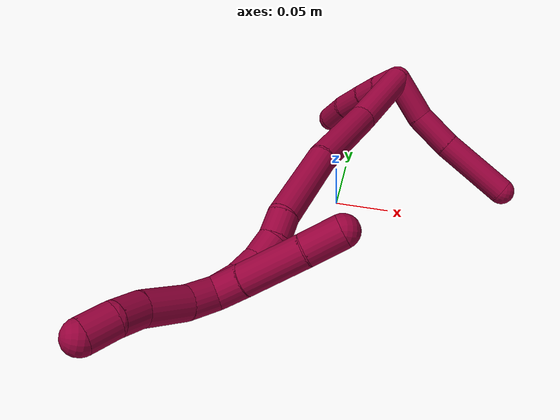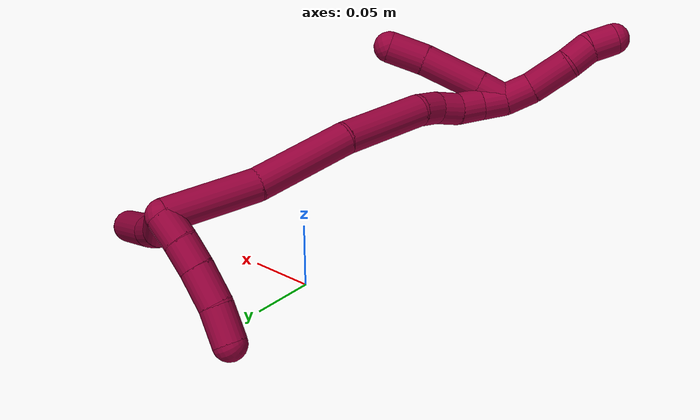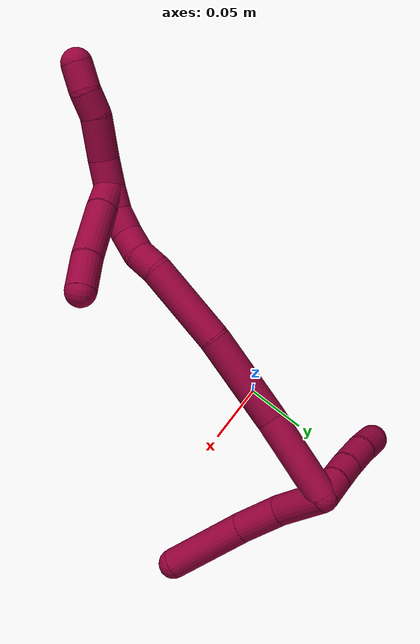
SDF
<sdf version="1.7">
 <world name="default">
  <model name="8">
   <static>0</static>
   <link name="8">
    <collision name="collision-cylinder-e_1_2_8">
     <pose>-0.012013 -0.012651 -0.012912 2.36642 -0.58654 -1.27377</pose>
     <geometry><cylinder><radius>0.0125</radius><length>0.043409</length></cylinder></geometry>
     <surface>
      <friction><ode><mu>1.16</mu><mu2>1.16</mu2><slip1>0</slip1><slip2>0</slip2></ode></friction>
      <contact><ode><kp>1e+06</kp><kd>1</kd><max_vel>0</max_vel><min_depth>0.001</min_depth></ode></contact>
     </surface>
    </collision>
    <visual name="visual-cylinder-e_1_2_8">
     <pose>-0.012013 -0.012651 -0.012912 2.36642 -0.58654 -1.27377</pose>
     <geometry><cylinder><radius>0.0125</radius><length>0.043409</length></cylinder></geometry>
     <material><ambient>0.584314 0 0.227451 1</ambient></material>
    </visual>
    <collision name="collision-cylinder-e_2_8_9">
     <pose>-0.030195 -0.038478 -0.038037 2.31825 -0.330791 -0.730309</pose>
     <geometry><cylinder><radius>0.0125</radius><length>0.037989</length></cylinder></geometry>
     <surface>
      <friction><ode><mu>1.16</mu><mu2>1.16</mu2><slip1>0</slip1><slip2>0</slip2></ode></friction>
      <contact><ode><kp>1e+06</kp><kd>1</kd><max_vel>0</max_vel><min_depth>0.001</min_depth></ode></contact>
     </surface>
    </collision>
    <visual name="visual-cylinder-e_2_8_9">
     <pose>-0.030195 -0.038478 -0.038037 2.31825 -0.330791 -0.730309</pose>
     <geometry><cylinder><radius>0.0125</radius><length>0.037989</length></cylinder></geometry>
     <material><ambient>0.584314 0 0.227451 1</ambient></material>
    </visual>
    <collision name="collision-cylinder-e_3_9_6">
     <pose>-0.044213 -0.075951 -0.073152 2.32665 -0.230862 -0.524863</pose>
     <geometry><cylinder><radius>0.0125</radius><length>0.068602</length></cylinder></geometry>
     <surface>
      <friction><ode><mu>1.16</mu><mu2>1.16</mu2><slip1>0</slip1><slip2>0</slip2></ode></friction>
      <contact><ode><kp>1e+06</kp><kd>1</kd><max_vel>0</max_vel><min_depth>0.001</min_depth></ode></contact>
     </surface>
    </collision>
    <visual name="visual-cylinder-e_3_9_6">
     <pose>-0.044213 -0.075951 -0.073152 2.32665 -0.230862 -0.524863</pose>
     <geometry><cylinder><radius>0.0125</radius><length>0.068602</length></cylinder></geometry>
     <material><ambient>0.584314 0 0.227451 1</ambient></material>
    </visual>
    <collision name="collision-cylinder-e_1_2_10">
     <pose>-0.008476 0.006205 0.003406 -1.06883 -0.875005 0.540143</pose>
     <geometry><cylinder><radius>0.0125</radius><length>0.022086</length></cylinder></geometry>
     <surface>
      <friction><ode><mu>1.16</mu><mu2>1.16</mu2><slip1>0</slip1><slip2>0</slip2></ode></friction>
      <contact><ode><kp>1e+06</kp><kd>1</kd><max_vel>0</max_vel><min_depth>0.001</min_depth></ode></contact>
     </surface>
    </collision>
    <visual name="visual-cylinder-e_1_2_10">
     <pose>-0.008476 0.006205 0.003406 -1.06883 -0.875005 0.540143</pose>
     <geometry><cylinder><radius>0.0125</radius><length>0.022086</length></cylinder></geometry>
     <material><ambient>0.584314 0 0.227451 1</ambient></material>
    </visual>
    <collision name="collision-cylinder-e_2_10_11">
     <pose>-0.025657 0.018523 0.009344 -1.17806 -0.920881 0.640024</pose>
     <geometry><cylinder><radius>0.0125</radius><length>0.021868</length></cylinder></geometry>
     <surface>
      <friction><ode><mu>1.16</mu><mu2>1.16</mu2><slip1>0</slip1><slip2>0</slip2></ode></friction>
      <contact><ode><kp>1e+06</kp><kd>1</kd><max_vel>0</max_vel><min_depth>0.001</min_depth></ode></contact>
     </surface>
    </collision>
    <visual name="visual-cylinder-e_2_10_11">
     <pose>-0.025657 0.018523 0.009344 -1.17806 -0.920881 0.640024</pose>
     <geometry><cylinder><radius>0.0125</radius><length>0.021868</length></cylinder></geometry>
     <material><ambient>0.584314 0 0.227451 1</ambient></material>
    </visual>
    <collision name="collision-cylinder-e_3_11_12">
     <pose>-0.0458 0.032986 0.014363 -1.28135 -0.919814 0.707559</pose>
     <geometry><cylinder><radius>0.0125</radius><length>0.028756</length></cylinder></geometry>
     <surface>
      <friction><ode><mu>1.16</mu><mu2>1.16</mu2><slip1>0</slip1><slip2>0</slip2></ode></friction>
      <contact><ode><kp>1e+06</kp><kd>1</kd><max_vel>0</max_vel><min_depth>0.001</min_depth></ode></contact>
     </surface>
    </collision>
    <visual name="visual-cylinder-e_3_11_12">
     <pose>-0.0458 0.032986 0.014363 -1.28135 -0.919814 0.707559</pose>
     <geometry><cylinder><radius>0.0125</radius><length>0.028756</length></cylinder></geometry>
     <material><ambient>0.584314 0 0.227451 1</ambient></material>
    </visual>
    <collision name="collision-cylinder-e_4_12_5">
     <pose>-0.068368 0.049225 0.017092 -1.54007 -0.953985 0.929137</pose>
     <geometry><cylinder><radius>0.0125</radius><length>0.027289</length></cylinder></geometry>
     <surface>
      <friction><ode><mu>1.16</mu><mu2>1.16</mu2><slip1>0</slip1><slip2>0</slip2></ode></friction>
      <contact><ode><kp>1e+06</kp><kd>1</kd><max_vel>0</max_vel><min_depth>0.001</min_depth></ode></contact>
     </surface>
    </collision>
    <visual name="visual-cylinder-e_4_12_5">
     <pose>-0.068368 0.049225 0.017092 -1.54007 -0.953985 0.929137</pose>
     <geometry><cylinder><radius>0.0125</radius><length>0.027289</length></cylinder></geometry>
     <material><ambient>0.584314 0 0.227451 1</ambient></material>
    </visual>
    <collision name="collision-cylinder-e_1_2_13">
     <pose>-0.014572 -0.021909 0.024815 0.723287 -0.414694 -0.158823</pose>
     <geometry><cylinder><radius>0.0125</radius><length>0.072336</length></cylinder></geometry>
     <surface>
      <friction><ode><mu>1.16</mu><mu2>1.16</mu2><slip1>0</slip1><slip2>0</slip2></ode></friction>
      <contact><ode><kp>1e+06</kp><kd>1</kd><max_vel>0</max_vel><min_depth>0.001</min_depth></ode></contact>
     </surface>
    </collision>
    <visual name="visual-cylinder-e_1_2_13">
     <pose>-0.014572 -0.021909 0.024815 0.723287 -0.414694 -0.158823</pose>
     <geometry><cylinder><radius>0.0125</radius><length>0.072336</length></cylinder></geometry>
     <material><ambient>0.584314 0 0.227451 1</ambient></material>
    </visual>
    <collision name="collision-cylinder-e_2_13_14">
     <pose>-0.038737 -0.069116 0.077196 0.742519 -0.250961 -0.09814</pose>
     <geometry><cylinder><radius>0.0125</radius><length>0.077251</length></cylinder></geometry>
     <surface>
      <friction><ode><mu>1.16</mu><mu2>1.16</mu2><slip1>0</slip1><slip2>0</slip2></ode></friction>
      <contact><ode><kp>1e+06</kp><kd>1</kd><max_vel>0</max_vel><min_depth>0.001</min_depth></ode></contact>
     </surface>
    </collision>
    <visual name="visual-cylinder-e_2_13_14">
     <pose>-0.038737 -0.069116 0.077196 0.742519 -0.250961 -0.09814</pose>
     <geometry><cylinder><radius>0.0125</radius><length>0.077251</length></cylinder></geometry>
     <material><ambient>0.584314 0 0.227451 1</ambient></material>
    </visual>
    <collision name="collision-cylinder-e_3_14_15">
     <pose>-0.062019 -0.11841 0.125974 0.846895 -0.403948 -0.18406</pose>
     <geometry><cylinder><radius>0.0125</radius><length>0.069659</length></cylinder></geometry>
     <surface>
      <friction><ode><mu>1.16</mu><mu2>1.16</mu2><slip1>0</slip1><slip2>0</slip2></ode></friction>
      <contact><ode><kp>1e+06</kp><kd>1</kd><max_vel>0</max_vel><min_depth>0.001</min_depth></ode></contact>
     </surface>
    </collision>
    <visual name="visual-cylinder-e_3_14_15">
     <pose>-0.062019 -0.11841 0.125974 0.846895 -0.403948 -0.18406</pose>
     <geometry><cylinder><radius>0.0125</radius><length>0.069659</length></cylinder></geometry>
     <material><ambient>0.584314 0 0.227451 1</ambient></material>
    </visual>
    <collision name="collision-cylinder-e_4_15_16">
     <pose>-0.081458 -0.149651 0.151299 1.05452 -0.603973 -0.358851</pose>
     <geometry><cylinder><radius>0.0125</radius><length>0.020247</length></cylinder></geometry>
     <surface>
      <friction><ode><mu>1.16</mu><mu2>1.16</mu2><slip1>0</slip1><slip2>0</slip2></ode></friction>
      <contact><ode><kp>1e+06</kp><kd>1</kd><max_vel>0</max_vel><min_depth>0.001</min_depth></ode></contact>
     </surface>
    </collision>
    <visual name="visual-cylinder-e_4_15_16">
     <pose>-0.081458 -0.149651 0.151299 1.05452 -0.603973 -0.358851</pose>
     <geometry><cylinder><radius>0.0125</radius><length>0.020247</length></cylinder></geometry>
     <material><ambient>0.584314 0 0.227451 1</ambient></material>
    </visual>
    <collision name="collision-cylinder-e_5_16_17">
     <pose>-0.093941 -0.16175 0.161094 0.70679 -0.733499 -0.281521</pose>
     <geometry><cylinder><radius>0.0125</radius><length>0.020117</length></cylinder></geometry>
     <surface>
      <friction><ode><mu>1.16</mu><mu2>1.16</mu2><slip1>0</slip1><slip2>0</slip2></ode></friction>
      <contact><ode><kp>1e+06</kp><kd>1</kd><max_vel>0</max_vel><min_depth>0.001</min_depth></ode></contact>
     </surface>
    </collision>
    <visual name="visual-cylinder-e_5_16_17">
     <pose>-0.093941 -0.16175 0.161094 0.70679 -0.733499 -0.281521</pose>
     <geometry><cylinder><radius>0.0125</radius><length>0.020117</length></cylinder></geometry>
     <material><ambient>0.584314 0 0.227451 1</ambient></material>
    </visual>
    <collision name="collision-cylinder-e_6_17_18">
     <pose>-0.105402 -0.171576 0.174214 0.589424 -0.48605 -0.150233</pose>
     <geometry><cylinder><radius>0.0125</radius><length>0.020239</length></cylinder></geometry>
     <surface>
      <friction><ode><mu>1.16</mu><mu2>1.16</mu2><slip1>0</slip1><slip2>0</slip2></ode></friction>
      <contact><ode><kp>1e+06</kp><kd>1</kd><max_vel>0</max_vel><min_depth>0.001</min_depth></ode></contact>
     </surface>
    </collision>
    <visual name="visual-cylinder-e_6_17_18">
     <pose>-0.105402 -0.171576 0.174214 0.589424 -0.48605 -0.150233</pose>
     <geometry><cylinder><radius>0.0125</radius><length>0.020239</length></cylinder></geometry>
     <material><ambient>0.584314 0 0.227451 1</ambient></material>
    </visual>
    <collision name="collision-cylinder-e_7_18_1">
     <pose>-0.114162 -0.179916 0.190249 0.373228 -0.411799 -0.078829</pose>
     <geometry><cylinder><radius>0.0125</radius><length>0.020151</length></cylinder></geometry>
     <surface>
      <friction><ode><mu>1.16</mu><mu2>1.16</mu2><slip1>0</slip1><slip2>0</slip2></ode></friction>
      <contact><ode><kp>1e+06</kp><kd>1</kd><max_vel>0</max_vel><min_depth>0.001</min_depth></ode></contact>
     </surface>
    </collision>
    <visual name="visual-cylinder-e_7_18_1">
     <pose>-0.114162 -0.179916 0.190249 0.373228 -0.411799 -0.078829</pose>
     <geometry><cylinder><radius>0.0125</radius><length>0.020151</length></cylinder></geometry>
     <material><ambient>0.584314 0 0.227451 1</ambient></material>
    </visual>
    <collision name="collision-cylinder-e_1_1_19">
     <pose>-0.109524 -0.185939 0.19177 2.78244 0.853815 2.38218</pose>
     <geometry><cylinder><radius>0.0125</radius><length>0.023005</length></cylinder></geometry>
     <surface>
      <friction><ode><mu>1.16</mu><mu2>1.16</mu2><slip1>0</slip1><slip2>0</slip2></ode></friction>
      <contact><ode><kp>1e+06</kp><kd>1</kd><max_vel>0</max_vel><min_depth>0.001</min_depth></ode></contact>
     </surface>
    </collision>
    <visual name="visual-cylinder-e_1_1_19">
     <pose>-0.109524 -0.185939 0.19177 2.78244 0.853815 2.38218</pose>
     <geometry><cylinder><radius>0.0125</radius><length>0.023005</length></cylinder></geometry>
     <material><ambient>0.584314 0 0.227451 1</ambient></material>
    </visual>
    <collision name="collision-cylinder-e_2_19_20">
     <pose>-0.083123 -0.192997 0.169376 2.86183 0.838596 2.52965</pose>
     <geometry><cylinder><radius>0.0125</radius><length>0.047682</length></cylinder></geometry>
     <surface>
      <friction><ode><mu>1.16</mu><mu2>1.16</mu2><slip1>0</slip1><slip2>0</slip2></ode></friction>
      <contact><ode><kp>1e+06</kp><kd>1</kd><max_vel>0</max_vel><min_depth>0.001</min_depth></ode></contact>
     </surface>
    </collision>
    <visual name="visual-cylinder-e_2_19_20">
     <pose>-0.083123 -0.192997 0.169376 2.86183 0.838596 2.52965</pose>
     <geometry><cylinder><radius>0.0125</radius><length>0.047682</length></cylinder></geometry>
     <material><ambient>0.584314 0 0.227451 1</ambient></material>
    </visual>
    <collision name="collision-cylinder-e_3_20_4">
     <pose>-0.055019 -0.198893 0.143812 2.99669 0.786308 2.79511</pose>
     <geometry><cylinder><radius>0.0125</radius><length>0.029313</length></cylinder></geometry>
     <surface>
      <friction><ode><mu>1.16</mu><mu2>1.16</mu2><slip1>0</slip1><slip2>0</slip2></ode></friction>
      <contact><ode><kp>1e+06</kp><kd>1</kd><max_vel>0</max_vel><min_depth>0.001</min_depth></ode></contact>
     </surface>
    </collision>
    <visual name="visual-cylinder-e_3_20_4">
     <pose>-0.055019 -0.198893 0.143812 2.99669 0.786308 2.79511</pose>
     <geometry><cylinder><radius>0.0125</radius><length>0.029313</length></cylinder></geometry>
     <material><ambient>0.584314 0 0.227451 1</ambient></material>
    </visual>
    <collision name="collision-cylinder-e_1_1_21">
     <pose>-0.119689 -0.186875 0.209778 0.317518 -0.129137 -0.020704</pose>
     <geometry><cylinder><radius>0.0125</radius><length>0.023205</length></cylinder></geometry>
     <surface>
      <friction><ode><mu>1.16</mu><mu2>1.16</mu2><slip1>0</slip1><slip2>0</slip2></ode></friction>
      <contact><ode><kp>1e+06</kp><kd>1</kd><max_vel>0</max_vel><min_depth>0.001</min_depth></ode></contact>
     </surface>
    </collision>
    <visual name="visual-cylinder-e_1_1_21">
     <pose>-0.119689 -0.186875 0.209778 0.317518 -0.129137 -0.020704</pose>
     <geometry><cylinder><radius>0.0125</radius><length>0.023205</length></cylinder></geometry>
     <material><ambient>0.584314 0 0.227451 1</ambient></material>
    </visual>
    <collision name="collision-cylinder-e_2_21_22">
     <pose>-0.119818 -0.195258 0.237288 0.281315 0.07893 0.011182</pose>
     <geometry><cylinder><radius>0.0125</radius><length>0.034624</length></cylinder></geometry>
     <surface>
      <friction><ode><mu>1.16</mu><mu2>1.16</mu2><slip1>0</slip1><slip2>0</slip2></ode></friction>
      <contact><ode><kp>1e+06</kp><kd>1</kd><max_vel>0</max_vel><min_depth>0.001</min_depth></ode></contact>
     </surface>
    </collision>
    <visual name="visual-cylinder-e_2_21_22">
     <pose>-0.119818 -0.195258 0.237288 0.281315 0.07893 0.011182</pose>
     <geometry><cylinder><radius>0.0125</radius><length>0.034624</length></cylinder></geometry>
     <material><ambient>0.584314 0 0.227451 1</ambient></material>
    </visual>
    <collision name="collision-cylinder-e_3_22_23">
     <pose>-0.118011 -0.205149 0.262796 0.518961 0.042975 0.01141</pose>
     <geometry><cylinder><radius>0.0125</radius><length>0.020581</length></cylinder></geometry>
     <surface>
      <friction><ode><mu>1.16</mu><mu2>1.16</mu2><slip1>0</slip1><slip2>0</slip2></ode></friction>
      <contact><ode><kp>1e+06</kp><kd>1</kd><max_vel>0</max_vel><min_depth>0.001</min_depth></ode></contact>
     </surface>
    </collision>
    <visual name="visual-cylinder-e_3_22_23">
     <pose>-0.118011 -0.205149 0.262796 0.518961 0.042975 0.01141</pose>
     <geometry><cylinder><radius>0.0125</radius><length>0.020581</length></cylinder></geometry>
     <material><ambient>0.584314 0 0.227451 1</ambient></material>
    </visual>
    <collision name="collision-cylinder-e_4_23_3">
     <pose>-0.120542 -0.214395 0.281235 0.411108 -0.278994 -0.058533</pose>
     <geometry><cylinder><radius>0.0125</radius><length>0.021589</length></cylinder></geometry>
     <surface>
      <friction><ode><mu>1.16</mu><mu2>1.16</mu2><slip1>0</slip1><slip2>0</slip2></ode></friction>
      <contact><ode><kp>1e+06</kp><kd>1</kd><max_vel>0</max_vel><min_depth>0.001</min_depth></ode></contact>
     </surface>
    </collision>
    <visual name="visual-cylinder-e_4_23_3">
     <pose>-0.120542 -0.214395 0.281235 0.411108 -0.278994 -0.058533</pose>
     <geometry><cylinder><radius>0.0125</radius><length>0.021589</length></cylinder></geometry>
     <material><ambient>0.584314 0 0.227451 1</ambient></material>
    </visual>
    <collision name="collision-sphere-3">
     <pose>-0.123514 -0.218542 0.290748 0 -0 0</pose>
     <geometry><sphere><radius>0.0125</radius></sphere></geometry>
     <surface>
      <friction><ode><mu>1.16</mu><mu2>1.16</mu2><slip1>0</slip1><slip2>0</slip2></ode></friction>
      <contact><ode><kp>1e+06</kp><kd>1</kd><max_vel>0</max_vel><min_depth>0.001</min_depth></ode></contact>
     </surface>
    </collision>
    <visual name="visual-sphere-3">
     <pose>-0.123514 -0.218542 0.290748 0 -0 0</pose>
     <geometry><sphere><radius>0.0125</radius></sphere></geometry>
     <material><ambient>0.584314 0 0.227451 1</ambient></material>
    </visual>
    <collision name="collision-sphere-23">
     <pose>-0.117569 -0.210248 0.271723 0 -0 0</pose>
     <geometry><sphere><radius>0.0125</radius></sphere></geometry>
     <surface>
      <friction><ode><mu>1.16</mu><mu2>1.16</mu2><slip1>0</slip1><slip2>0</slip2></ode></friction>
      <contact><ode><kp>1e+06</kp><kd>1</kd><max_vel>0</max_vel><min_depth>0.001</min_depth></ode></contact>
     </surface>
    </collision>
    <visual name="visual-sphere-23">
     <pose>-0.117569 -0.210248 0.271723 0 -0 0</pose>
     <geometry><sphere><radius>0.0125</radius></sphere></geometry>
     <material><ambient>0.584314 0 0.227451 1</ambient></material>
    </visual>
    <collision name="collision-sphere-22">
     <pose>-0.118453 -0.20005 0.253868 0 -0 0</pose>
     <geometry><sphere><radius>0.0125</radius></sphere></geometry>
     <surface>
      <friction><ode><mu>1.16</mu><mu2>1.16</mu2><slip1>0</slip1><slip2>0</slip2></ode></friction>
      <contact><ode><kp>1e+06</kp><kd>1</kd><max_vel>0</max_vel><min_depth>0.001</min_depth></ode></contact>
     </surface>
    </collision>
    <visual name="visual-sphere-22">
     <pose>-0.118453 -0.20005 0.253868 0 -0 0</pose>
     <geometry><sphere><radius>0.0125</radius></sphere></geometry>
     <material><ambient>0.584314 0 0.227451 1</ambient></material>
    </visual>
    <collision name="collision-sphere-21">
     <pose>-0.121183 -0.190467 0.220708 0 -0 0</pose>
     <geometry><sphere><radius>0.0125</radius></sphere></geometry>
     <surface>
      <friction><ode><mu>1.16</mu><mu2>1.16</mu2><slip1>0</slip1><slip2>0</slip2></ode></friction>
      <contact><ode><kp>1e+06</kp><kd>1</kd><max_vel>0</max_vel><min_depth>0.001</min_depth></ode></contact>
     </surface>
    </collision>
    <visual name="visual-sphere-21">
     <pose>-0.121183 -0.190467 0.220708 0 -0 0</pose>
     <geometry><sphere><radius>0.0125</radius></sphere></geometry>
     <material><ambient>0.584314 0 0.227451 1</ambient></material>
    </visual>
    <collision name="collision-sphere-4">
     <pose>-0.044646 -0.200388 0.133566 0 -0 0</pose>
     <geometry><sphere><radius>0.0125</radius></sphere></geometry>
     <surface>
      <friction><ode><mu>1.16</mu><mu2>1.16</mu2><slip1>0</slip1><slip2>0</slip2></ode></friction>
      <contact><ode><kp>1e+06</kp><kd>1</kd><max_vel>0</max_vel><min_depth>0.001</min_depth></ode></contact>
     </surface>
    </collision>
    <visual name="visual-sphere-4">
     <pose>-0.044646 -0.200388 0.133566 0 -0 0</pose>
     <geometry><sphere><radius>0.0125</radius></sphere></geometry>
     <material><ambient>0.584314 0 0.227451 1</ambient></material>
    </visual>
    <collision name="collision-sphere-20">
     <pose>-0.065392 -0.197398 0.154057 0 -0 0</pose>
     <geometry><sphere><radius>0.0125</radius></sphere></geometry>
     <surface>
      <friction><ode><mu>1.16</mu><mu2>1.16</mu2><slip1>0</slip1><slip2>0</slip2></ode></friction>
      <contact><ode><kp>1e+06</kp><kd>1</kd><max_vel>0</max_vel><min_depth>0.001</min_depth></ode></contact>
     </surface>
    </collision>
    <visual name="visual-sphere-20">
     <pose>-0.065392 -0.197398 0.154057 0 -0 0</pose>
     <geometry><sphere><radius>0.0125</radius></sphere></geometry>
     <material><ambient>0.584314 0 0.227451 1</ambient></material>
    </visual>
    <collision name="collision-sphere-11">
     <pose>-0.034362 0.024636 0.011876 0 -0 0</pose>
     <geometry><sphere><radius>0.0125</radius></sphere></geometry>
     <surface>
      <friction><ode><mu>1.16</mu><mu2>1.16</mu2><slip1>0</slip1><slip2>0</slip2></ode></friction>
      <contact><ode><kp>1e+06</kp><kd>1</kd><max_vel>0</max_vel><min_depth>0.001</min_depth></ode></contact>
     </surface>
    </collision>
    <visual name="visual-sphere-11">
     <pose>-0.034362 0.024636 0.011876 0 -0 0</pose>
     <geometry><sphere><radius>0.0125</radius></sphere></geometry>
     <material><ambient>0.584314 0 0.227451 1</ambient></material>
    </visual>
    <collision name="collision-sphere-10">
     <pose>-0.016952 0.012411 0.006812 0 -0 0</pose>
     <geometry><sphere><radius>0.0125</radius></sphere></geometry>
     <surface>
      <friction><ode><mu>1.16</mu><mu2>1.16</mu2><slip1>0</slip1><slip2>0</slip2></ode></friction>
      <contact><ode><kp>1e+06</kp><kd>1</kd><max_vel>0</max_vel><min_depth>0.001</min_depth></ode></contact>
     </surface>
    </collision>
    <visual name="visual-sphere-10">
     <pose>-0.016952 0.012411 0.006812 0 -0 0</pose>
     <geometry><sphere><radius>0.0125</radius></sphere></geometry>
     <material><ambient>0.584314 0 0.227451 1</ambient></material>
    </visual>
    <collision name="collision-sphere-6">
     <pose>-0.052062 -0.100249 -0.096055 0 -0 0</pose>
     <geometry><sphere><radius>0.0125</radius></sphere></geometry>
     <surface>
      <friction><ode><mu>1.16</mu><mu2>1.16</mu2><slip1>0</slip1><slip2>0</slip2></ode></friction>
      <contact><ode><kp>1e+06</kp><kd>1</kd><max_vel>0</max_vel><min_depth>0.001</min_depth></ode></contact>
     </surface>
    </collision>
    <visual name="visual-sphere-6">
     <pose>-0.052062 -0.100249 -0.096055 0 -0 0</pose>
     <geometry><sphere><radius>0.0125</radius></sphere></geometry>
     <material><ambient>0.584314 0 0.227451 1</ambient></material>
    </visual>
    <collision name="collision-sphere-9">
     <pose>-0.036365 -0.051653 -0.050248 0 -0 0</pose>
     <geometry><sphere><radius>0.0125</radius></sphere></geometry>
     <surface>
      <friction><ode><mu>1.16</mu><mu2>1.16</mu2><slip1>0</slip1><slip2>0</slip2></ode></friction>
      <contact><ode><kp>1e+06</kp><kd>1</kd><max_vel>0</max_vel><min_depth>0.001</min_depth></ode></contact>
     </surface>
    </collision>
    <visual name="visual-sphere-9">
     <pose>-0.036365 -0.051653 -0.050248 0 -0 0</pose>
     <geometry><sphere><radius>0.0125</radius></sphere></geometry>
     <material><ambient>0.584314 0 0.227451 1</ambient></material>
    </visual>
    <collision name="collision-sphere-2">
     <geometry><sphere><radius>0.0125</radius></sphere></geometry>
     <surface>
      <friction><ode><mu>1.16</mu><mu2>1.16</mu2><slip1>0</slip1><slip2>0</slip2></ode></friction>
      <contact><ode><kp>1e+06</kp><kd>1</kd><max_vel>0</max_vel><min_depth>0.001</min_depth></ode></contact>
     </surface>
    </collision>
    <visual name="visual-sphere-2">
     <geometry><sphere><radius>0.0125</radius></sphere></geometry>
     <material><ambient>0.584314 0 0.227451 1</ambient></material>
    </visual>
    <collision name="collision-sphere-19">
     <pose>-0.100854 -0.188596 0.184694 0 -0 0</pose>
     <geometry><sphere><radius>0.0125</radius></sphere></geometry>
     <surface>
      <friction><ode><mu>1.16</mu><mu2>1.16</mu2><slip1>0</slip1><slip2>0</slip2></ode></friction>
      <contact><ode><kp>1e+06</kp><kd>1</kd><max_vel>0</max_vel><min_depth>0.001</min_depth></ode></contact>
     </surface>
    </collision>
    <visual name="visual-sphere-19">
     <pose>-0.100854 -0.188596 0.184694 0 -0 0</pose>
     <geometry><sphere><radius>0.0125</radius></sphere></geometry>
     <material><ambient>0.584314 0 0.227451 1</ambient></material>
    </visual>
    <collision name="collision-sphere-8">
     <pose>-0.024026 -0.025302 -0.025825 0 -0 0</pose>
     <geometry><sphere><radius>0.0125</radius></sphere></geometry>
     <surface>
      <friction><ode><mu>1.16</mu><mu2>1.16</mu2><slip1>0</slip1><slip2>0</slip2></ode></friction>
      <contact><ode><kp>1e+06</kp><kd>1</kd><max_vel>0</max_vel><min_depth>0.001</min_depth></ode></contact>
     </surface>
    </collision>
    <visual name="visual-sphere-8">
     <pose>-0.024026 -0.025302 -0.025825 0 -0 0</pose>
     <geometry><sphere><radius>0.0125</radius></sphere></geometry>
     <material><ambient>0.584314 0 0.227451 1</ambient></material>
    </visual>
    <collision name="collision-sphere-12">
     <pose>-0.057237 0.041337 0.01685 0 -0 0</pose>
     <geometry><sphere><radius>0.0125</radius></sphere></geometry>
     <surface>
      <friction><ode><mu>1.16</mu><mu2>1.16</mu2><slip1>0</slip1><slip2>0</slip2></ode></friction>
      <contact><ode><kp>1e+06</kp><kd>1</kd><max_vel>0</max_vel><min_depth>0.001</min_depth></ode></contact>
     </surface>
    </collision>
    <visual name="visual-sphere-12">
     <pose>-0.057237 0.041337 0.01685 0 -0 0</pose>
     <geometry><sphere><radius>0.0125</radius></sphere></geometry>
     <material><ambient>0.584314 0 0.227451 1</ambient></material>
    </visual>
    <collision name="collision-sphere-5">
     <pose>-0.079498 0.057114 0.017335 0 -0 0</pose>
     <geometry><sphere><radius>0.0125</radius></sphere></geometry>
     <surface>
      <friction><ode><mu>1.16</mu><mu2>1.16</mu2><slip1>0</slip1><slip2>0</slip2></ode></friction>
      <contact><ode><kp>1e+06</kp><kd>1</kd><max_vel>0</max_vel><min_depth>0.001</min_depth></ode></contact>
     </surface>
    </collision>
    <visual name="visual-sphere-5">
     <pose>-0.079498 0.057114 0.017335 0 -0 0</pose>
     <geometry><sphere><radius>0.0125</radius></sphere></geometry>
     <material><ambient>0.584314 0 0.227451 1</ambient></material>
    </visual>
    <collision name="collision-sphere-13">
     <pose>-0.029145 -0.043818 0.04963 0 -0 0</pose>
     <geometry><sphere><radius>0.0125</radius></sphere></geometry>
     <surface>
      <friction><ode><mu>1.16</mu><mu2>1.16</mu2><slip1>0</slip1><slip2>0</slip2></ode></friction>
      <contact><ode><kp>1e+06</kp><kd>1</kd><max_vel>0</max_vel><min_depth>0.001</min_depth></ode></contact>
     </surface>
    </collision>
    <visual name="visual-sphere-13">
     <pose>-0.029145 -0.043818 0.04963 0 -0 0</pose>
     <geometry><sphere><radius>0.0125</radius></sphere></geometry>
     <material><ambient>0.584314 0 0.227451 1</ambient></material>
    </visual>
    <collision name="collision-sphere-14">
     <pose>-0.048329 -0.094415 0.104763 0 -0 0</pose>
     <geometry><sphere><radius>0.0125</radius></sphere></geometry>
     <surface>
      <friction><ode><mu>1.16</mu><mu2>1.16</mu2><slip1>0</slip1><slip2>0</slip2></ode></friction>
      <contact><ode><kp>1e+06</kp><kd>1</kd><max_vel>0</max_vel><min_depth>0.001</min_depth></ode></contact>
     </surface>
    </collision>
    <visual name="visual-sphere-14">
     <pose>-0.048329 -0.094415 0.104763 0 -0 0</pose>
     <geometry><sphere><radius>0.0125</radius></sphere></geometry>
     <material><ambient>0.584314 0 0.227451 1</ambient></material>
    </visual>
    <collision name="collision-sphere-15">
     <pose>-0.075709 -0.142405 0.147186 0 -0 0</pose>
     <geometry><sphere><radius>0.0125</radius></sphere></geometry>
     <surface>
      <friction><ode><mu>1.16</mu><mu2>1.16</mu2><slip1>0</slip1><slip2>0</slip2></ode></friction>
      <contact><ode><kp>1e+06</kp><kd>1</kd><max_vel>0</max_vel><min_depth>0.001</min_depth></ode></contact>
     </surface>
    </collision>
    <visual name="visual-sphere-15">
     <pose>-0.075709 -0.142405 0.147186 0 -0 0</pose>
     <geometry><sphere><radius>0.0125</radius></sphere></geometry>
     <material><ambient>0.584314 0 0.227451 1</ambient></material>
    </visual>
    <collision name="collision-sphere-16">
     <pose>-0.087207 -0.156898 0.155412 0 -0 0</pose>
     <geometry><sphere><radius>0.0125</radius></sphere></geometry>
     <surface>
      <friction><ode><mu>1.16</mu><mu2>1.16</mu2><slip1>0</slip1><slip2>0</slip2></ode></friction>
      <contact><ode><kp>1e+06</kp><kd>1</kd><max_vel>0</max_vel><min_depth>0.001</min_depth></ode></contact>
     </surface>
    </collision>
    <visual name="visual-sphere-16">
     <pose>-0.087207 -0.156898 0.155412 0 -0 0</pose>
     <geometry><sphere><radius>0.0125</radius></sphere></geometry>
     <material><ambient>0.584314 0 0.227451 1</ambient></material>
    </visual>
    <collision name="collision-sphere-17">
     <pose>-0.100675 -0.166602 0.166776 0 -0 0</pose>
     <geometry><sphere><radius>0.0125</radius></sphere></geometry>
     <surface>
      <friction><ode><mu>1.16</mu><mu2>1.16</mu2><slip1>0</slip1><slip2>0</slip2></ode></friction>
      <contact><ode><kp>1e+06</kp><kd>1</kd><max_vel>0</max_vel><min_depth>0.001</min_depth></ode></contact>
     </surface>
    </collision>
    <visual name="visual-sphere-17">
     <pose>-0.100675 -0.166602 0.166776 0 -0 0</pose>
     <geometry><sphere><radius>0.0125</radius></sphere></geometry>
     <material><ambient>0.584314 0 0.227451 1</ambient></material>
    </visual>
    <collision name="collision-sphere-18">
     <pose>-0.110129 -0.176549 0.181651 0 -0 0</pose>
     <geometry><sphere><radius>0.0125</radius></sphere></geometry>
     <surface>
      <friction><ode><mu>1.16</mu><mu2>1.16</mu2><slip1>0</slip1><slip2>0</slip2></ode></friction>
      <contact><ode><kp>1e+06</kp><kd>1</kd><max_vel>0</max_vel><min_depth>0.001</min_depth></ode></contact>
     </surface>
    </collision>
    <visual name="visual-sphere-18">
     <pose>-0.110129 -0.176549 0.181651 0 -0 0</pose>
     <geometry><sphere><radius>0.0125</radius></sphere></geometry>
     <material><ambient>0.584314 0 0.227451 1</ambient></material>
    </visual>
    <collision name="collision-sphere-1">
     <pose>-0.118195 -0.183283 0.198847 0 -0 0</pose>
     <geometry><sphere><radius>0.0125</radius></sphere></geometry>
     <surface>
      <friction><ode><mu>1.16</mu><mu2>1.16</mu2><slip1>0</slip1><slip2>0</slip2></ode></friction>
      <contact><ode><kp>1e+06</kp><kd>1</kd><max_vel>0</max_vel><min_depth>0.001</min_depth></ode></contact>
     </surface>
    </collision>
    <visual name="visual-sphere-1">
     <pose>-0.118195 -0.183283 0.198847 0 -0 0</pose>
     <geometry><sphere><radius>0.0125</radius></sphere></geometry>
     <material><ambient>0.584314 0 0.227451 1</ambient></material>
    </visual>
    <inertial>
     <pose>-0.060034 -0.096266 0.087467 0 -0 0</pose>
     <mass>0.75</mass>
     <inertia><ixx>9.5e-05</ixx><ixy>0</ixy><ixz>0</ixz><iyy>4.7e-05</iyy><iyz>0</iyz><izz>0.000163</izz></inertia>
    </inertial>
   </link>
   <pose>0.041373 0.09793 0.082997 -0.377723 -1.05292 0.923033</pose>
  </model>
 </world>
</sdf>
